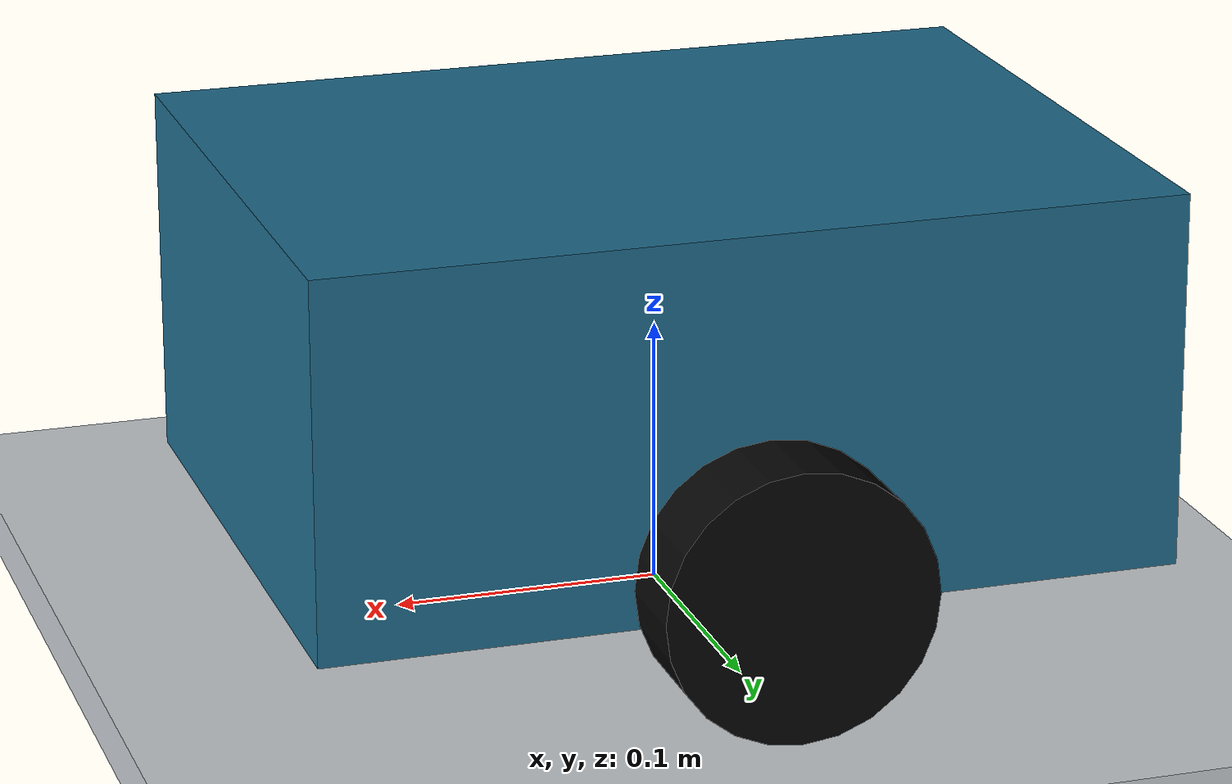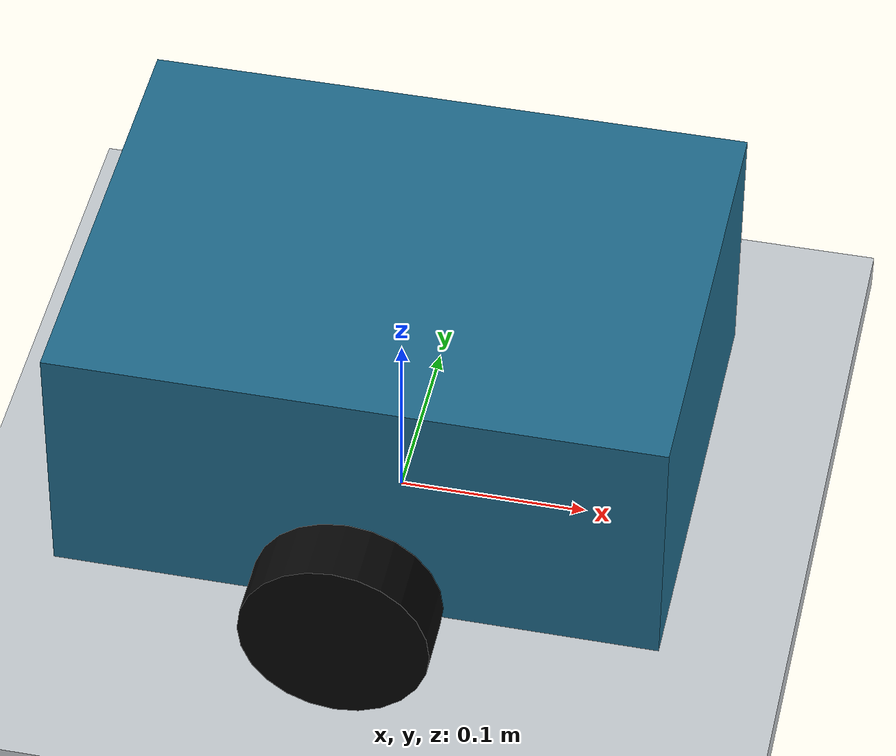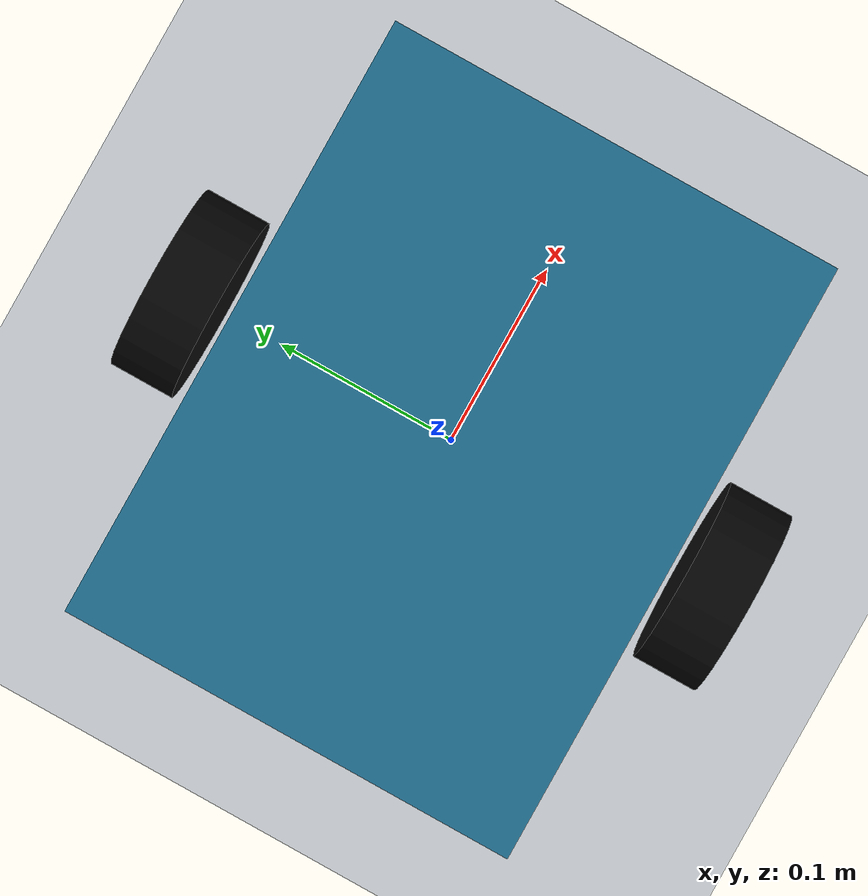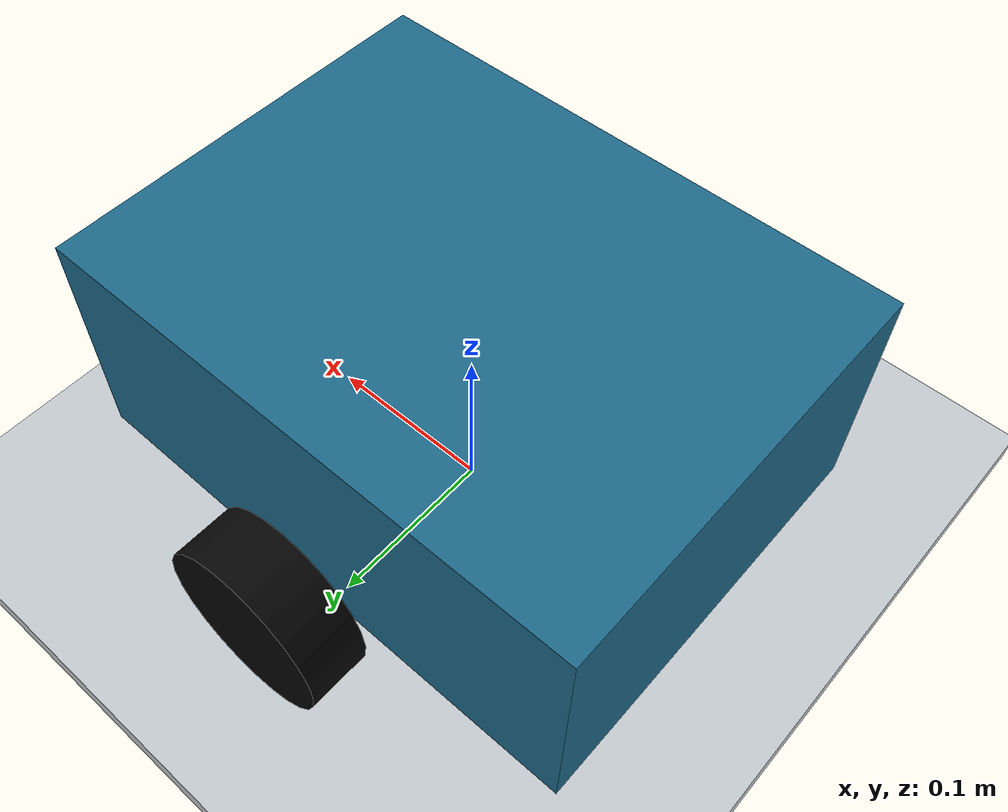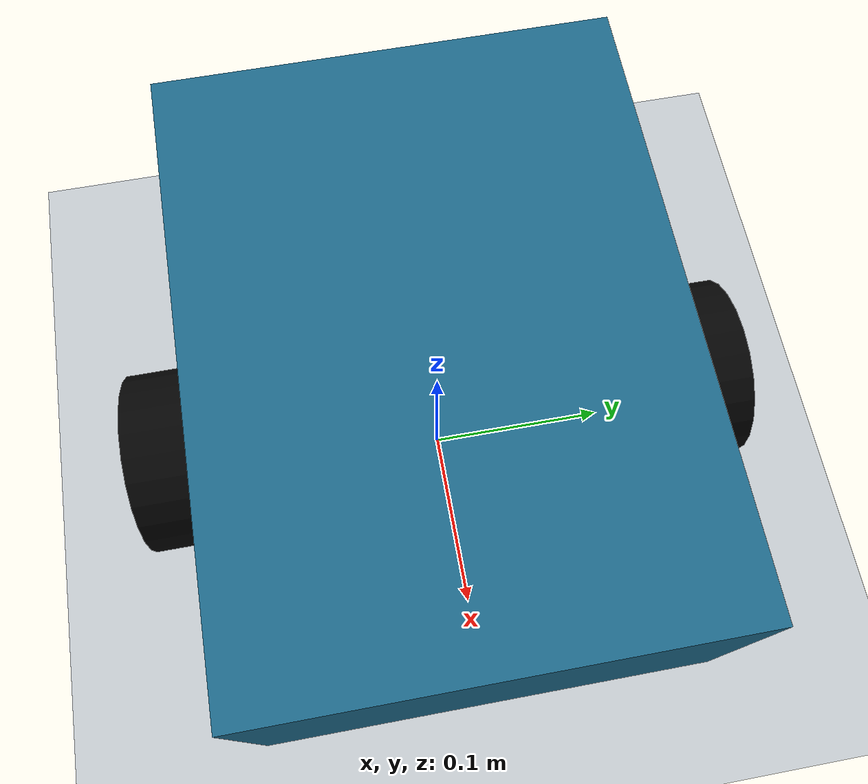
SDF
<?xml version="1.0" ?>
<sdf version="1.6">
  <world name="rslg_flat_empty">
    <gravity>0 0 -9.8</gravity>
    <magnetic_field>6.0e-6 2.3e-5 -4.2e-5</magnetic_field>
    <atmosphere type="adiabatic"/>

    <include>
      <uri>model://sun</uri>
    </include>

    <model name="rslg_same_floor_plane">
      <static>true</static>
      <link name="link">
        <collision name="collision">
          <geometry>
            <box>
              <size>24 18 0.02</size>
            </box>
          </geometry>
          <surface>
            <friction>
              <ode>
                <mu>1.0</mu>
                <mu2>1.0</mu2>
              </ode>
            </friction>
          </surface>
        </collision>
        <visual name="visual">
          <geometry>
            <box>
              <size>24 18 0.02</size>
            </box>
          </geometry>
          <material>
            <ambient>0.78 0.80 0.82 1</ambient>
            <diffuse>0.78 0.80 0.82 1</diffuse>
          </material>
        </visual>
      </link>
      <pose>0 0 -0.01 0 0 0</pose>
    </model>

    <include>
      <uri>model://rslg_diff_drive</uri>
      <pose>0 0 0 0 0 0</pose>
    </include>
  </world>
</sdf>

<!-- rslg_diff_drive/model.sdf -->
<sdf version="1.6">
  <model name="rslg_diff_drive">
    <pose>0 0 0 0 0 0</pose>

    <link name="base_footprint"/>

    <link name="base_link">
      <inertial>
        <pose>0 0 0.10 0 0 0</pose>
        <mass>1.8</mass>
        <inertia>
          <ixx>0.02</ixx>
          <ixy>0.0</ixy>
          <ixz>0.0</ixz>
          <iyy>0.02</iyy>
          <iyz>0.0</iyz>
          <izz>0.03</izz>
        </inertia>
      </inertial>
      <collision name="collision">
        <pose>0 0 0.10 0 0 0</pose>
        <geometry>
          <box>
            <size>0.32 0.24 0.14</size>
          </box>
        </geometry>
      </collision>
      <visual name="visual">
        <pose>0 0 0.10 0 0 0</pose>
        <geometry>
          <box>
            <size>0.32 0.24 0.14</size>
          </box>
        </geometry>
        <material>
          <ambient>0.12 0.24 0.32 1</ambient>
          <diffuse>0.12 0.42 0.55 1</diffuse>
        </material>
      </visual>
    </link>

    <joint name="base_footprint_joint" type="fixed">
      <parent>base_footprint</parent>
      <child>base_link</child>
    </joint>

    <link name="left_wheel">
      <inertial>
        <pose>0 0.15 0.05 -1.570796 0 0</pose>
        <mass>0.25</mass>
        <inertia>
          <ixx>0.0004</ixx>
          <ixy>0.0</ixy>
          <ixz>0.0</ixz>
          <iyy>0.0004</iyy>
          <iyz>0.0</iyz>
          <izz>0.0004</izz>
        </inertia>
      </inertial>
      <collision name="collision">
        <pose>0 0.15 0.05 -1.570796 0 0</pose>
        <geometry>
          <cylinder>
            <radius>0.05</radius>
            <length>0.035</length>
          </cylinder>
        </geometry>
        <surface>
          <friction>
            <ode>
              <mu>100000.0</mu>
              <mu2>100000.0</mu2>
              <fdir1>0 0 0</fdir1>
              <slip1>0.0</slip1>
              <slip2>0.0</slip2>
            </ode>
          </friction>
          <contact>
            <ode>
              <soft_cfm>0</soft_cfm>
              <soft_erp>0.2</soft_erp>
              <kp>1e5</kp>
              <kd>1</kd>
              <max_vel>0.01</max_vel>
              <min_depth>0.001</min_depth>
            </ode>
          </contact>
        </surface>
      </collision>
      <visual name="visual">
        <pose>0 0.15 0.05 -1.570796 0 0</pose>
        <geometry>
          <cylinder>
            <radius>0.05</radius>
            <length>0.035</length>
          </cylinder>
        </geometry>
        <material>
          <ambient>0.02 0.02 0.02 1</ambient>
          <diffuse>0.02 0.02 0.02 1</diffuse>
        </material>
      </visual>
    </link>

    <link name="right_wheel">
      <inertial>
        <pose>0 -0.15 0.05 -1.570796 0 0</pose>
        <mass>0.25</mass>
        <inertia>
          <ixx>0.0004</ixx>
          <ixy>0.0</ixy>
          <ixz>0.0</ixz>
          <iyy>0.0004</iyy>
          <iyz>0.0</iyz>
          <izz>0.0004</izz>
        </inertia>
      </inertial>
      <collision name="collision">
        <pose>0 -0.15 0.05 -1.570796 0 0</pose>
        <geometry>
          <cylinder>
            <radius>0.05</radius>
            <length>0.035</length>
          </cylinder>
        </geometry>
        <surface>
          <friction>
            <ode>
              <mu>100000.0</mu>
              <mu2>100000.0</mu2>
              <fdir1>0 0 0</fdir1>
              <slip1>0.0</slip1>
              <slip2>0.0</slip2>
            </ode>
          </friction>
          <contact>
            <ode>
              <soft_cfm>0</soft_cfm>
              <soft_erp>0.2</soft_erp>
              <kp>1e5</kp>
              <kd>1</kd>
              <max_vel>0.01</max_vel>
              <min_depth>0.001</min_depth>
            </ode>
          </contact>
        </surface>
      </collision>
      <visual name="visual">
        <pose>0 -0.15 0.05 -1.570796 0 0</pose>
        <geometry>
          <cylinder>
            <radius>0.05</radius>
            <length>0.035</length>
          </cylinder>
        </geometry>
        <material>
          <ambient>0.02 0.02 0.02 1</ambient>
          <diffuse>0.02 0.02 0.02 1</diffuse>
        </material>
      </visual>
    </link>

    <link name="caster">
      <collision name="collision">
        <pose>-0.13 0 0.025 0 0 0</pose>
        <geometry>
          <sphere>
            <radius>0.025</radius>
          </sphere>
        </geometry>
      </collision>
      <visual name="visual">
        <pose>-0.13 0 0.025 0 0 0</pose>
        <geometry>
          <sphere>
            <radius>0.025</radius>
          </sphere>
        </geometry>
        <material>
          <ambient>0.05 0.05 0.05 1</ambient>
          <diffuse>0.05 0.05 0.05 1</diffuse>
        </material>
      </visual>
    </link>

    <joint name="left_wheel_joint" type="revolute">
      <parent>base_link</parent>
      <child>left_wheel</child>
      <pose>0 0.15 0.05 -1.570796 0 0</pose>
      <axis>
        <xyz>0 0 1</xyz>
        <limit>
          <lower>-1e16</lower>
          <upper>1e16</upper>
        </limit>
      </axis>
    </joint>

    <joint name="right_wheel_joint" type="revolute">
      <parent>base_link</parent>
      <child>right_wheel</child>
      <pose>0 -0.15 0.05 -1.570796 0 0</pose>
      <axis>
        <xyz>0 0 1</xyz>
        <limit>
          <lower>-1e16</lower>
          <upper>1e16</upper>
        </limit>
      </axis>
    </joint>

    <joint name="caster_joint" type="fixed">
      <parent>base_link</parent>
      <child>caster</child>
    </joint>

    <plugin name="rslg_diff_drive" filename="libgazebo_ros_diff_drive.so">
      <ros>
        <remapping>cmd_vel:=/cmd_vel</remapping>
        <remapping>odom:=/odom</remapping>
      </ros>
      <update_rate>50.0</update_rate>
      <left_joint>left_wheel_joint</left_joint>
      <right_joint>right_wheel_joint</right_joint>
      <wheel_separation>0.30</wheel_separation>
      <wheel_diameter>0.10</wheel_diameter>
      <max_wheel_torque>20.0</max_wheel_torque>
      <max_wheel_acceleration>1.0</max_wheel_acceleration>
      <command_topic>/cmd_vel</command_topic>
      <odometry_topic>/odom</odometry_topic>
      <odometry_frame>odom</odometry_frame>
      <robot_base_frame>base_footprint</robot_base_frame>
      <publish_odom>true</publish_odom>
      <publish_odom_tf>true</publish_odom_tf>
      <publish_wheel_tf>false</publish_wheel_tf>
    </plugin>
  </model>
</sdf>
